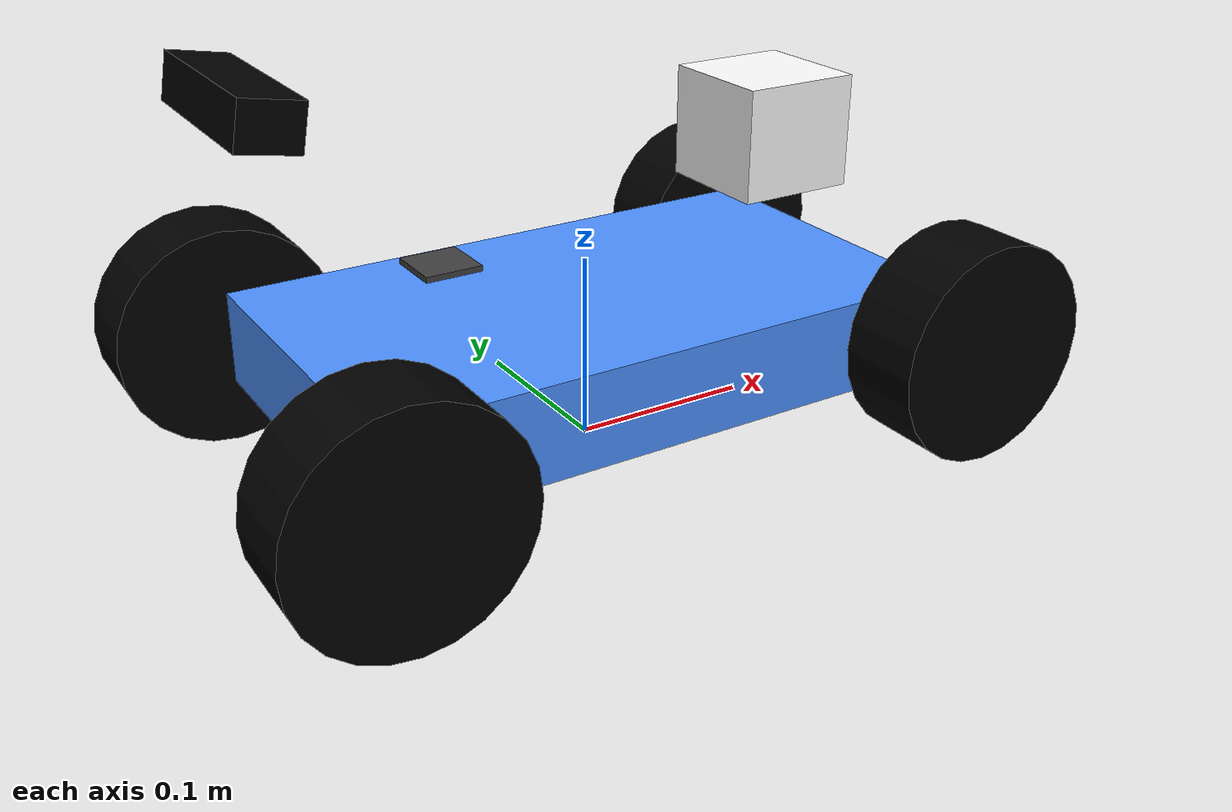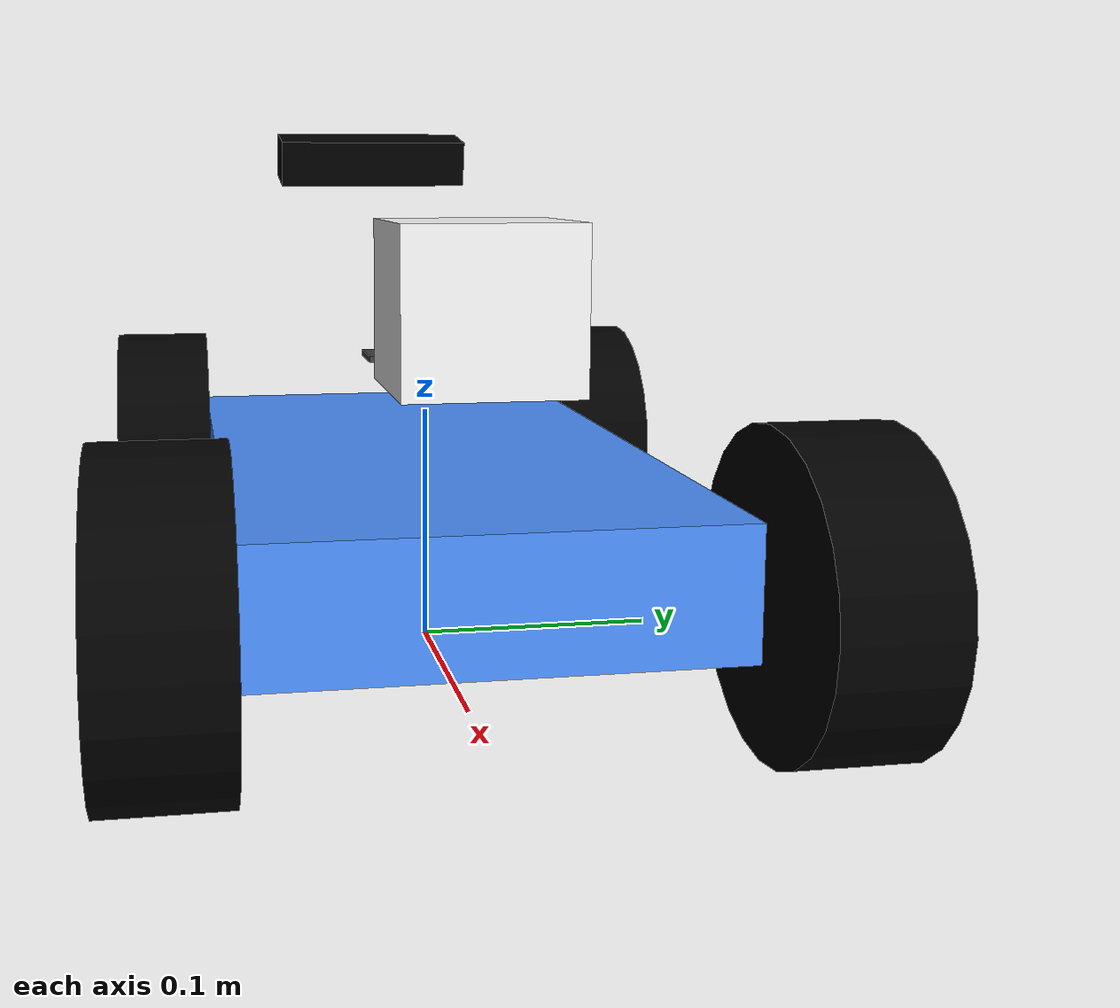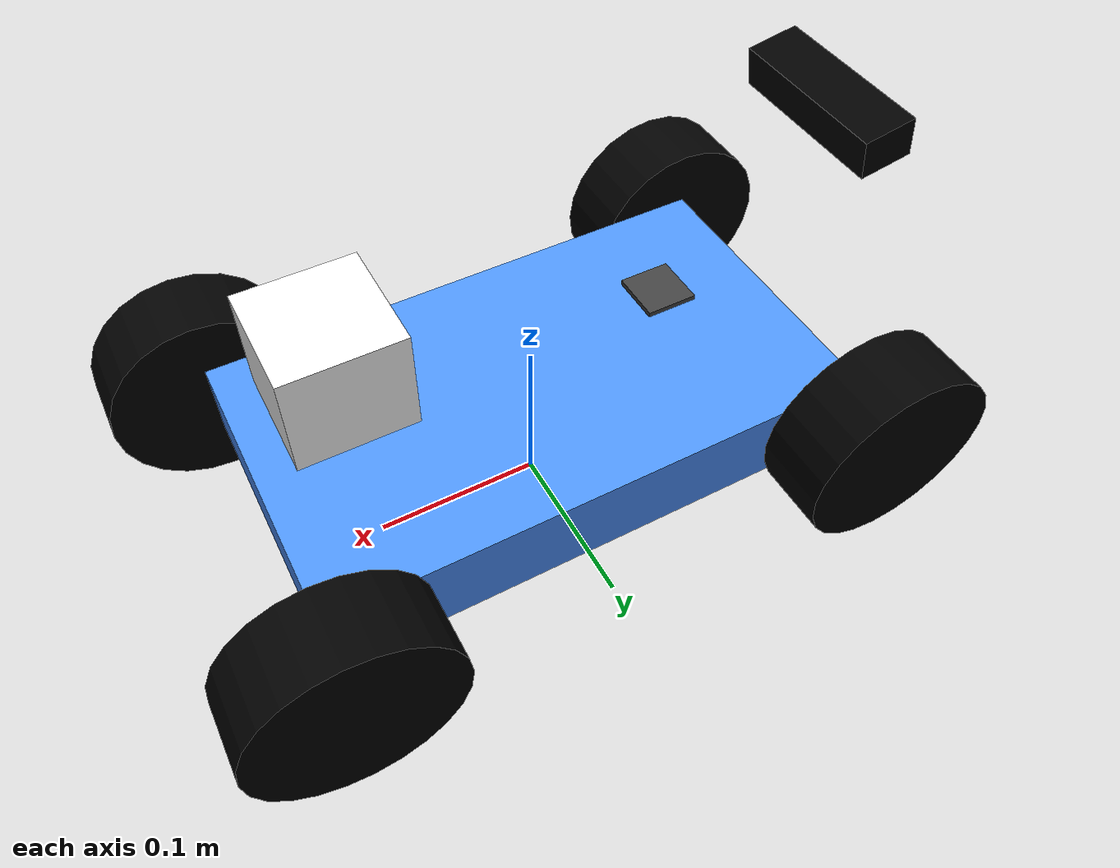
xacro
<?xml version="1.0"?>
<robot xmlns:xacro="http://www.ros.org/wiki/xacro" name="racecar">

    <xacro:property name="wheelbase" value="0.3240" />
    <xacro:property name="width" value="0.1800" />
    <xacro:property name="height" value="0.05" />
    <xacro:property name="wheel_radius" value="0.0590" />
    <xacro:property name="wheel_length" value="0.0450" />
    <xacro:property name="car_name" value="ego_racecar" />

    <material name="black">
        <color rgba="0.0 0.0 0.0 1"/>
    </material>

    <material name="white">
        <color rgba="1.0 1.0 1.0 1"/>
    </material>

    <material name="grey">
        <color rgba="0.25 0.25 0.25 1"/>
    </material>

    <material name="blue">
        <color rgba="0.3 0.57 1. 1."/>
    </material>

    <!-- BASE LINK -->

    <link name="${car_name}/base_link">
        <inertial>
            <origin xyz="0 0 0.05" rpy="0 0 0"/>
            <mass value="0.18" />
            <inertia ixx="0.0002835" ixy="0.0" ixz="0.0" iyy="0.0002835" iyz="0.0" izz="0.000324"/>
        </inertial>
        <collision>
            <origin xyz="0 0 0.05" rpy="0 0 0"/>
            <geometry>
                <cylinder radius="0.06" length="0.09"/>
            </geometry>
        </collision>
        <visual>
            <origin rpy="0 0 0" xyz="0 0 0"/>
            <geometry>
                <box size="${wheelbase} ${width} ${height}"/>
            </geometry>
            <material name="blue"/>
        </visual>
    </link>

    <!-- BASE FOOTPRINT LINK-->

    <link name="${car_name}/base_footprint">
    </link>

    <joint name="base_footprint_joint" type="fixed">
        <parent link="${car_name}/base_footprint"/>
        <child link="${car_name}/base_link"/>
        <origin xyz="0 0 ${wheel_radius}" rpy="0 0 0"/>
    </joint>

    <!-- LIDAR LINK -->

    <link name="${car_name}/lidar_link">
	<visual>
            <origin rpy="0 0 ${pi/2}" xyz="0.0 0.0 0.0"/>
            <geometry>
                <box size="0.065 0.065 0.06"/>
            </geometry>
            <material name="white"/>
        </visual>
    </link>

    <joint name="lidar_joint" type="fixed">
        <parent link="${car_name}/base_link"/>
        <child link="${car_name}/lidar_link"/>
        <origin xyz="${0.2733 - wheelbase/2} 0.0 0.096" rpy="0 0 0"/>
    </joint>

    <!-- CAMERA LINK -->

    <link name="${car_name}/camera_link">
	    <visual>
            <origin rpy="0 0 ${pi/2}" xyz="0.0 0.0 0.0"/>
            <geometry>
                <box size="0.097 0.03 0.023"/>
            </geometry>
            <material name="black"/>
        </visual>
    </link>

    <joint name="camera_joint" type="fixed">
        <parent link="${car_name}/base_link"/>
        <child link="${car_name}/camera_link"/>
        <origin xyz="${-0.015 - wheelbase/2} 0.0 0.15" rpy="0 ${10*pi/180} 0"/>
    </joint>

    <!-- IMU LINK -->

    <link name="${car_name}/imu_link">
	    <visual>
            <origin rpy="0 0 ${pi/2}" xyz="0.0 0.0 0.0"/>
            <geometry>
                <box size="0.03 0.03 0.003"/>
            </geometry>
            <material name="grey"/>
        </visual>
    </link>

    <joint name="imu_joint" type="fixed">
        <parent link="${car_name}/base_link"/>
        <child link="${car_name}/imu_link"/>
        <origin xyz="${0.08 - wheelbase/2} 0.0 0.055" rpy="0 0 0"/>
    </joint>

    <!-- WHEEL FL LINK -->

    <link name="${car_name}/wheel_FL">
        <visual>
            <origin rpy="${pi/2} 0.0 0.0" xyz="0.0 0.0 0.0"/>
            <geometry>
                <cylinder radius="${wheel_radius}" length="${wheel_length}"/>
            </geometry>
            <material name="black"/>
        </visual>
    </link>

    <link name="${car_name}/hinge_FL"/>

    <joint name="base_to_hinge_FL" type="fixed">
        <parent link="${car_name}/base_link"/>
        <child link="${car_name}/hinge_FL"/>
        <origin xyz="${wheelbase/2} ${(wheel_length+width)/2} 0.0" rpy="0 0 0"/>
    </joint>

    <joint name="wheel_FL_joint" type="continuous">
        <parent link="${car_name}/hinge_FL"/>
        <child link="${car_name}/wheel_FL"/>
        <limit lower="-0.2" upper="0.2" effort="0.1" velocity="0.05"/>
        <axis xyz="1 0 0"/>
    </joint>

    <!-- WHEEL FR LINK -->

    <link name="${car_name}/wheel_FR">
        <visual>
            <origin rpy="${pi/2} 0.0 0.0" xyz="0.0 0.0 0.0"/>
            <geometry>
                <cylinder radius="${wheel_radius}" length="${wheel_length}"/>
            </geometry>
            <material name="black"/>
        </visual>
    </link>

    <link name="${car_name}/hinge_FR"/>

    <joint name="base_to_hinge_FR" type="fixed">
        <parent link="${car_name}/base_link"/>
        <child link="${car_name}/hinge_FR"/>
        <origin xyz="${wheelbase/2} -${(wheel_length+width)/2} 0.0" rpy="0 0 0"/>
    </joint>

    <joint name="wheel_FR_joint" type="continuous">
        <parent link="${car_name}/hinge_FR"/>
        <child link="${car_name}/wheel_FR"/>
        <limit lower="-0.2" upper="0.2" effort="0.1" velocity="0.05"/>
        <axis xyz="1 0 0"/>
    </joint>

    <!-- WHEEL RL LINK -->

    <link name="${car_name}/wheel_RL">
        <visual>
            <origin rpy="${pi/2} 0.0 0.0" xyz="0.0 0.0 0.0"/>
            <geometry>
                <cylinder radius="${wheel_radius}" length="${wheel_length}"/>
            </geometry>
            <material name="black"/>
        </visual>
    </link>

    <joint name="wheel_RL_joint" type="revolute">
        <parent link="${car_name}/base_link"/>
        <child link="${car_name}/wheel_RL"/>
        <origin xyz="-${wheelbase/2} ${(wheel_length+width)/2} 0.0" rpy="0 0 0"/>
        <limit lower="-0.2" upper="0.2" effort="0.1" velocity="0.05"/>
        <axis xyz="1 0 0"/>
    </joint>

    <!-- WHEEL RR LINK -->

    <link name="${car_name}/wheel_RR">
        <visual>
            <origin rpy="${pi/2} 0.0 0.0" xyz="0.0 0.0 0.0"/>
            <geometry>
                <cylinder radius="${wheel_radius}" length="${wheel_length}"/>
            </geometry>
            <material name="black"/>
        </visual>
    </link>

    <joint name="wheel_RR_joint" type="revolute">
        <parent link="${car_name}/base_link"/>
        <child link="${car_name}/wheel_RR"/>
        <origin xyz="-${wheelbase/2} -${(wheel_length+width)/2} 0.0" rpy="0 0 0"/>
        <limit lower="-0.2" upper="0.2" effort="0.1" velocity="0.005"/>
        <axis xyz="1 0 0"/>
    </joint>

    <!-- GAZEBO -->

    <gazebo reference="${car_name}/base_link">
        <kp>100000.0</kp>
        <kd>100000.0</kd>
        <mu1>10.0</mu1>
        <mu2>10.0</mu2>
        <material>Gazebo/Grey</material>
    </gazebo>

    <!-- camera -->
    <gazebo reference="${car_name}/camera_link">
        <sensor type="camera" name="camera1">
        <update_rate>15.0</update_rate>
        <camera name="head">

            <pose>0 0 0 0 0 0</pose>

            <horizontal_fov>1.3962634</horizontal_fov>
            <image>
            <width>400</width>
            <height>400</height>
            <format>R8G8B8</format>
            </image>
            <clip>
            <near>0.01</near>
            <far>100</far>
            </clip>
            <noise>
            <type>gaussian</type>
            <stddev>0.007</stddev>
            </noise>
        </camera>
        <plugin name="camera_controller" filename="libgazebo_ros_camera.so">
            <alwaysOn>true</alwaysOn>
            <updateRate>0.0</updateRate>
            <cameraName>my_robot/camera1</cameraName>
            <imageTopicName>image_raw</imageTopicName>
            <cameraInfoTopicName>camera_info</cameraInfoTopicName>
            <frameName>${car_name}/camera_link</frameName>
            <hackBaseline>0.07</hackBaseline>
            <distortionK1>0.0</distortionK1>
            <distortionK2>0.0</distortionK2>
            <distortionK3>0.0</distortionK3>
            <distortionT1>0.0</distortionT1>
            <distortionT2>0.0</distortionT2>
        </plugin>
        </sensor>
    </gazebo>

    <gazebo reference="${car_name}/lidar_link">
        <material value="Gazebo/Blue" />
        <sensor type="ray" name="lidar">
            <always_on>true</always_on>
            <update_rate>30</update_rate>
            <pose>0 0 0 0 0 0</pose>
            <visualize>true</visualize>
            <ray>
            <scan>
                <horizontal>
                <samples>811</samples>
                <resolution>1</resolution>
                <min_angle>-2.35</min_angle>
                <max_angle>2.35</max_angle>
                </horizontal>
            </scan>
            <range>
                <min>0.02</min>
                <max>30.0</max>
                <resolution>0.01</resolution>
            </range>
            </ray>
            <plugin name="scan" filename="libgazebo_ros_gpu_laser.so">
            <topicName>/ego_racecar/scan</topicName>
            <frameName>${car_name}/lidar_link</frameName>
            </plugin>
        </sensor>
        </gazebo>

</robot>
